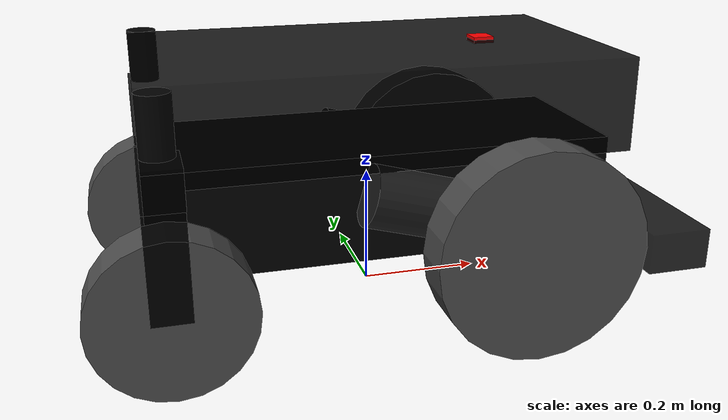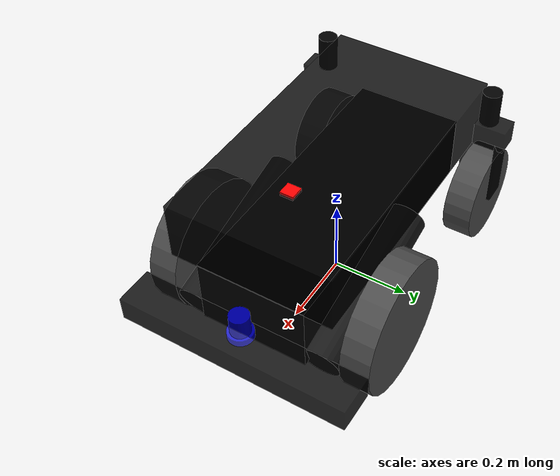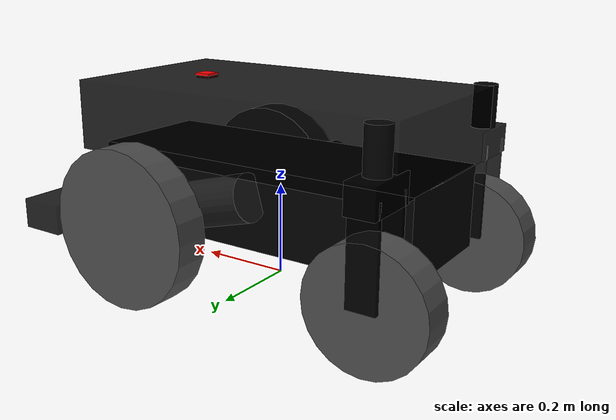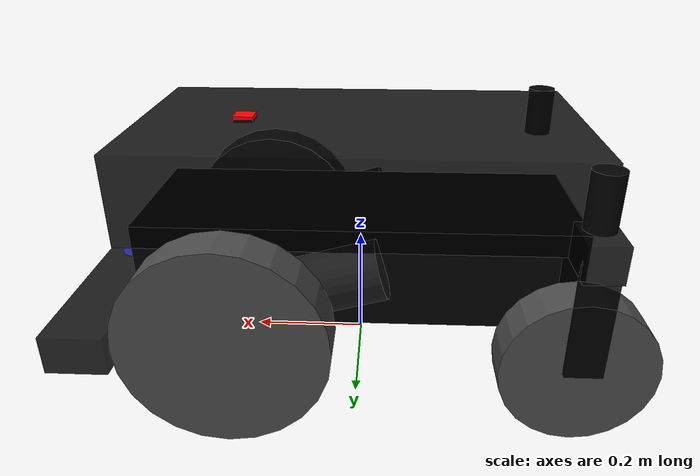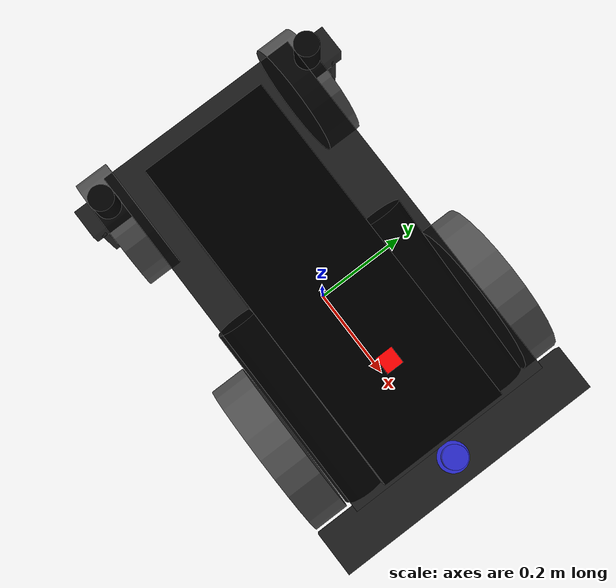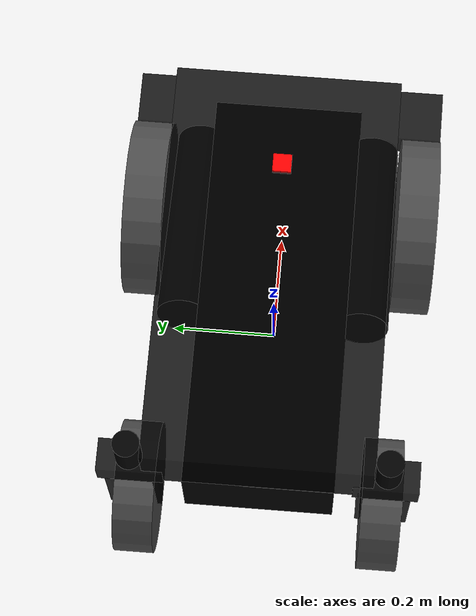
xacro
<?xml version="1.0" ?>
<robot name="test_robot1" xmlns:xacro="http://ros.org/wiki/xacro">

    <material name="black">
        <color rgba="0.0 0.0 0.0 0.85"/>
    </material>

        <material name="blue">
	        <color rgba="0 0 0.8 0.8"/>
	</material>

	    <material name="grey">
	        <color rgba="0.3 0.3 0.3 1.0"/>
	</material>

	    <material name="grey2">
	        <color rgba="0.1 0.1 0.1 1.0"/>
	</material>

	    <material name="white">
	        <color rgba="1.0 1.0 1.0 1.0"/>
	</material>

        <material name="black_1">
            <color rgba="0.0 0.0 0.0 0.9"/>
    </material>

        <material name="black_2">
            <color rgba="0.0 0.0 0.0 1.0"/>
    </material>

        <material name="red">
            <color rgba="1 0.0 0.0 1.0"/>
    </material>

    <link name="base_footprint"/>

    <joint name="base_joint" type="fixed">
    <parent link="base_footprint"/>
    <child link="base_link"/>
    <origin xyz="0.0 0.0 0.0950" rpy="0 0 0"/>
    </joint>

    <link name="base_link">
        <visual>
        <origin xyz="0.0 0.0 0.25" rpy="0 0 0"/>
        <geometry>
        <box size="0.7550 0.4200 0.1500"/>
        </geometry>
        <material name="black"/>
        </visual>

        <collision>
        <origin xyz="0.0 0.0 0.25" rpy="0 0 0"/>
        <geometry>
        <box size="0.7550 0.4200 0.1500"/>
        </geometry>
        </collision>

    </link>

    <joint name="base_joint2" type="fixed">
    <parent link="base_footprint"/>
    <child link="base_link2"/>
    <origin xyz="0.0 0.0 0.0" rpy="0 0 0"/>
    </joint>

    <link name="base_link2">
        <visual>
        <origin xyz="0.4275 0.0 0.1275" rpy="0 0 0"/>
        <geometry>
        <box size="0.1000 0.6000 0.0650"/>
        </geometry>
        <material name="black"/>
        </visual>

        <collision>
        <origin xyz="0.4275 0.0 0.1275" rpy="0 0 0"/>
        <geometry>
        <box size="0.1000 0.6000 0.0650"/>
        </geometry>
        </collision>

    </link>

    <joint name="base_joint3" type="fixed">
    <parent link="base_footprint"/>
    <child link="base_link3"/>
    <origin xyz="0.0 0.0 0.0" rpy="0 0 0"/>
    </joint>

    <link name="base_link3">
        <visual>
        <origin xyz="0.0 0.0 0.185" rpy="0 0 0"/>
        <geometry>
        <box size="0.7550 0.2800 0.1750"/>
        </geometry>
        <material name="black_2"/>
        </visual>

        <collision>
        <origin xyz="0.0 0.0 0.185" rpy="0 0 0"/>
        <geometry>
        <box size="0.7550 0.2800 0.1750"/>
        </geometry>
        </collision>

    </link>

    <joint name="dcmotor_left_joint" type="fixed">
    <parent link="base_footprint"/>
    <child link="dcmotor_left_link"/>
    <origin xyz="0.0 0.0 0.0" rpy="0 0 0"/>
    </joint>

    <link name="dcmotor_left_link">
        <visual>
        <origin xyz="0.16 0.17 0.165" rpy="0.0 -1.3 0.0"/>
        <geometry>
        <cylinder length="0.42" radius="0.05"/>
        </geometry>
        <material name="grey2"/>
        </visual>

        <collision>
        <origin xyz="0.16 0.17 0.165" rpy="0.0 -1.3 0.0"/>
        <geometry>
            <cylinder length="0.42" radius="0.05"/>
        </geometry>
        </collision>
    </link>

    <joint name="dcmotor_right_joint" type="fixed">
    <parent link="base_footprint"/>
    <child link="dcmotor_right_link"/>
    <origin xyz="0.0 0.0 0.0" rpy="0 0 0"/>
    </joint>

    <link name="dcmotor_right_link">
        <visual>
        <origin xyz="0.16 -0.17 0.165" rpy="0.0 -1.3 0.0"/>
        <geometry>
        <cylinder length="0.42" radius="0.05"/>
        </geometry>
        <material name="grey2"/>
        </visual>

        <collision>
        <origin xyz="0.16 -0.17 0.165" rpy="0.0 -1.3 0.0"/>
        <geometry>
            <cylinder length="0.42" radius="0.05"/>
        </geometry>
        </collision>
    </link>

    <joint name="lidar_under_joint" type="fixed">
    <parent link="base_footprint"/>
    <child link="lidar_link_under"/>
    <origin xyz="0.0 0.0 0.0" rpy="0 0 0"/>
    </joint>

    <link name="lidar_link_under">
        <visual>
        <origin xyz="0.42 0.0 0.1680" rpy="0.0 0.0 0.0"/>
        <geometry>
        <cylinder length="0.0200" radius="0.032"/>
        </geometry>
        <material name="blue"/>
        </visual>

        <collision>
        <origin xyz="0.42 0.0 0.1680" rpy="0.0 0.0 0.0"/>
        <geometry>
            <cylinder length="0.0200" radius="0.0320"/>
        </geometry>
        </collision>

    </link>

    <joint name="lidar_joint" type="fixed">
    <parent link="base_footprint"/>
    <child link="lidar_link_over"/>
    <origin xyz="0.420 0.0 0.1950" rpy="0 0 0"/>
    </joint>

    <link name="lidar_link_over">
        <visual>
        <origin xyz="0.0 0.0 0.0" rpy="0.0 0.0 0.0"/>
        <geometry>
        <cylinder length="0.0700" radius="0.0250"/>
        </geometry>
        <material name="blue"/>
        </visual>

        <collision>
        <origin xyz="0.0 0.0 0.0" rpy="0.0 0.0 0.0"/>
        <geometry>
            <cylinder length="0.0700" radius="0.0250"/>
        </geometry>
        </collision>

    </link>

    <joint name="imu_joint" type="fixed">
    <parent link="base_footprint"/>
    <child link="imu_link"/>
    <origin xyz="0.2 0.0 0.42" rpy="0 0 0"/>
    </joint>

    <link name="imu_link">
        <visual>
        <origin xyz="0.0 0.0 0.0" rpy="0 0 0"/>
        <geometry>
        <box size="0.0350 0.0350 0.010"/>
        </geometry>
        <material name="red"/>
        </visual>

        <collision>
        <origin xyz="0.0 0.0 0.0" rpy="0 0 0"/>
        <geometry>
        <box size="0.0350 0.0350 0.010"/>
        </geometry>
        </collision>

    </link>

    <joint name="support_left_joint" type="fixed">
    <parent link="base_footprint"/>
    <child link="support_left_link"/>
    <origin xyz="0.0 0.0 0.0" rpy="0 0 0"/>
    </joint>

    <link name="support_left_link">
        <visual>
        <origin xyz="-0.352 0.233 0.3" rpy="0 0 0"/>
        <geometry>
        <box size="0.06 0.12 0.06"/>
        </geometry>
        <material name="black"/>
        </visual>

        <collision>
        <origin xyz="-0.352 0.233 0.3" rpy="0 0 0"/>
        <geometry>
        <box size="0.06 0.12 0.06"/>
        </geometry>
        </collision>

    </link>

    <joint name="support_left2_joint" type="fixed">
    <parent link="base_footprint"/>
    <child link="support_left2_link"/>
    <origin xyz="0.0 0.0 0.0" rpy="0 0 0"/>
    </joint>

    <link name="support_left2_link">
        <visual>
        <origin xyz="-0.352 0.275 0.2" rpy="0 0 0"/>
        <geometry>
        <box size="0.06 0.01 0.2"/>
        </geometry>
        <material name="black"/>
        </visual>

        <collision>
        <origin xyz="-0.352 0.233 0.3" rpy="0 0 0"/>
        <geometry>
        <box size="0.06 0.12 0.06"/>
        </geometry>
        </collision>

    </link>

    <joint name="support_left3_joint" type="fixed">
    <parent link="base_footprint"/>
    <child link="support_left3_link"/>
    <origin xyz="0.0 0.0 0.0" rpy="0 0 0"/>
    </joint>

    <link name="support_left3_link">
        <visual>
        <origin xyz="-0.352 0.188 0.2" rpy="0 0 0"/>
        <geometry>
        <box size="0.06 0.01 0.2"/>
        </geometry>
        <material name="black"/>
        </visual>

        <collision>
        <origin xyz="-0.352 0.233 0.3" rpy="0 0 0"/>
        <geometry>
        <box size="0.06 0.12 0.06"/>
        </geometry>
        </collision>

    </link>

    <joint name="support_right_joint" type="fixed">
    <parent link="base_footprint"/>
    <child link="support_right_link"/>
    <origin xyz="0.0 0.0 0.0" rpy="0 0 0"/>
    </joint>

    <link name="support_right_link">
        <visual>
        <origin xyz="-0.352 -0.233 0.3" rpy="0 0 0"/>
        <geometry>
        <box size="0.06 0.12 0.06"/>
        </geometry>
        <material name="black"/>
        </visual>

        <collision>
        <origin xyz="-0.352 -0.233 0.3" rpy="0 0 0"/>
        <geometry>
        <box size="0.06 0.12 0.06"/>
        </geometry>
        </collision>

    </link>

    <joint name="support_right2_joint" type="fixed">
    <parent link="base_footprint"/>
    <child link="support_right2_link"/>
    <origin xyz="0.0 0.0 0.0" rpy="0 0 0"/>
    </joint>

    <link name="support_right2_link">
        <visual>
        <origin xyz="-0.352 -0.275 0.2" rpy="0 0 0"/>
        <geometry>
        <box size="0.06 0.01 0.2"/>
        </geometry>
        <material name="black"/>
        </visual>

        <collision>
        <origin xyz="-0.352 -0.275 0.3" rpy="0 0 0"/>
        <geometry>
        <box size="0.06 0.12 0.06"/>
        </geometry>
        </collision>

    </link>

    <joint name="support_right3_joint" type="fixed">
    <parent link="base_footprint"/>
    <child link="support_right3_link"/>
    <origin xyz="0.0 0.0 0.0" rpy="0 0 0"/>
    </joint>

    <link name="support_right3_link">
        <visual>
        <origin xyz="-0.352 -0.188 0.2" rpy="0 0 0"/>
        <geometry>
        <box size="0.06 0.01 0.2"/>
        </geometry>
        <material name="black"/>
        </visual>

        <collision>
        <origin xyz="-0.352 -0.188 0.3" rpy="0 0 0"/>
        <geometry>
        <box size="0.06 0.12 0.06"/>
        </geometry>
        </collision>

    </link>

    <joint name="wheel_left_joint" type="fixed">
        <parent link="base_link"/>
        <child link="wheel_left_up_link"/>
        <origin xyz="0.0 0.0 0.0950" rpy="1.57 0.0 0.0"/>
        <axis xyz="0 0 1"/>
    </joint>

    <link name="wheel_left_up_link">
        <visual>
        <origin xyz="0.2 -0.05 0.26" rpy="0.0 0.0 0.0"/>
        <geometry>
        <cylinder length="0.075" radius="0.17"/>
        </geometry>
        <material name="grey"/>
        </visual>

        <collision>
        <origin xyz="0.2 -0.05 0.26" rpy="0.0 0.0 0.0"/>
        <geometry>
            <cylinder length="0.075" radius="0.17"/>
        </geometry>
        </collision>
    </link>

    <joint name="wheel_left2_joint" type="fixed">
        <parent link="base_link"/>
        <child link="wheel_left_down_link"/>
        <origin xyz="0.0 0.0 0.0" rpy="0.0 0.0 0.0"/>
        <axis xyz="0 0 1"/>
    </joint>

    <link name="wheel_left_down_link">
        <visual>
        <origin xyz="-0.35 -0.23 0.0" rpy="1.57 0.0 0.0"/>
        <geometry>
        <cylinder length="0.075" radius="0.125"/>
        </geometry>
        <material name="grey"/>
        </visual>

        <collision>
        <origin xyz="-0.35 -0.23 0.0" rpy="1.57 0.0 0.0"/>
        <geometry>
            <cylinder length="0.075" radius="0.125"/>
        </geometry>
        </collision>
    </link>

    <joint name="wheel_rignt_joint" type="fixed">
        <parent link="base_link"/>
        <child link="wheel_rignt_up_link"/>
        <origin xyz="0.0 0.0 0.0950" rpy="1.57 0.0 0.0"/>
        <axis xyz="0 0 1"/>
    </joint>

    <link name="wheel_rignt_up_link">
        <visual>
        <origin xyz="0.2 -0.05 -0.26" rpy="0.0 0.0 0.0"/>
        <geometry>
        <cylinder length="0.075" radius="0.17"/>
        </geometry>
        <material name="grey"/>
        </visual>

        <collision>
        <origin xyz="0.2 -0.05 -0.26" rpy="0.0 0.0 0.0"/>
        <geometry>
            <cylinder length="0.075" radius="0.17"/>
        </geometry>
        </collision>
    </link>

    <joint name="wheel_right2_joint" type="fixed">
        <parent link="base_link"/>
        <child link="wheel_right_down_link"/>
        <origin xyz="0.0 0.0 0.0" rpy="0.0 0.0 0.0"/>
        <axis xyz="0 0 1"/>
    </joint>

    <link name="wheel_right_down_link">
        <visual>
        <origin xyz="-0.35 0.23 0.0" rpy="1.57 0.0 0.0"/>
        <geometry>
        <cylinder length="0.075" radius="0.125"/>
        </geometry>
        <material name="grey"/>
        </visual>

        <collision>
        <origin xyz="-0.35 0.23 0.0" rpy="1.57 0.0 0.0"/>
        <geometry>
            <cylinder length="0.075" radius="0.125"/>
        </geometry>
        </collision>
    </link>

    <joint name="wheel_supportleft_joint" type="fixed">
        <parent link="base_link"/>
        <child link="wheel_support_left_link"/>
        <origin xyz="0.0 0.0 0.0950" rpy="0.0 0.0 0.0"/>
    </joint>

    <link name="wheel_support_left_link">
        <visual>
        <origin xyz="-0.3525 0.235 0.185" rpy="0.0 0.0 0.0"/>
        <geometry>
        <cylinder length="0.090" radius="0.0250"/>
        </geometry>
        <material name="black_1"/>
        </visual>

        <collision>
        <origin xyz="-0.3525 0.235 0.185" rpy="0.0 0.0 0.0"/>
        <geometry>
            <cylinder length="0.090" radius="0.0250"/>
        </geometry>
        </collision>
    </link>

     <joint name="wheel_supportrignt_joint" type="fixed">
        <parent link="base_link"/>
        <child link="wheel_support_right_link"/>
        <origin xyz="0.0 0.0 0.0950" rpy="0.0 0.0 0.0"/>
    </joint>

    <link name="wheel_support_right_link">
        <visual>
        <origin xyz="-0.3525 -0.235 0.185" rpy="0.0 0.0 0.0"/>
        <geometry>
        <cylinder length="0.090" radius="0.0250"/>
        </geometry>
        <material name="black_1"/>
        </visual>

        <collision>
        <origin xyz="-0.3525 -0.235 0.185" rpy="0.0 0.0 0.0"/>
        <geometry>
            <cylinder length="0.090" radius="0.0250"/>
        </geometry>
        </collision>
    </link>
</robot>
